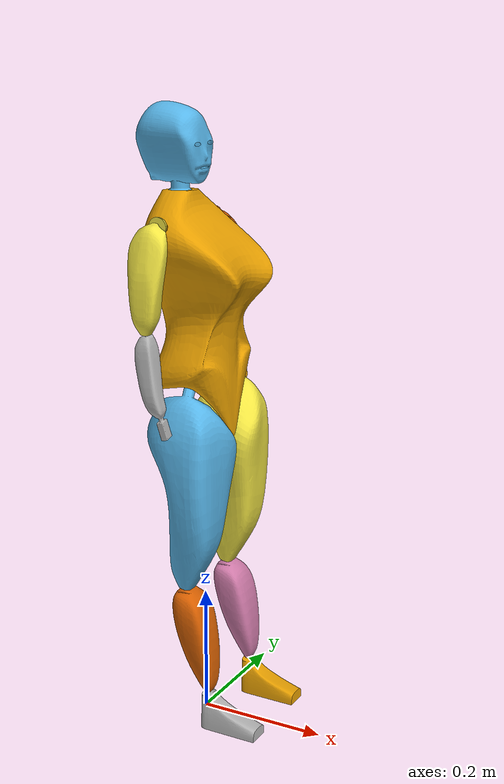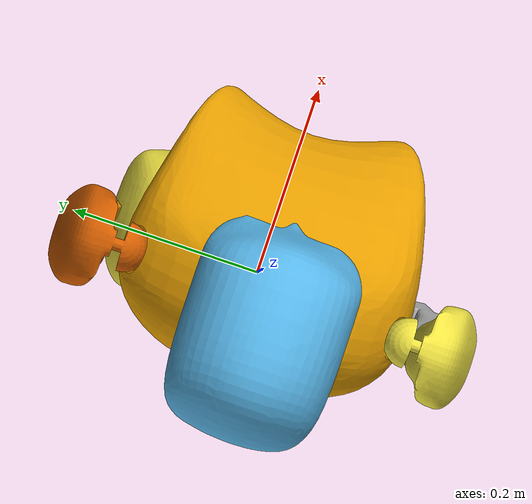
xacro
<?xml version="1.0"?>
<robot xmlns:xacro="http://www.ros.org/wiki/xacro" name="Selene">

    <xacro:include filename="$(find humanoid_robot)/urdf/robot_core.urdf.xacro"/>
    <xacro:include filename="$(find humanoid_robot)/urdf/ros2_control.xacro"/>

    <xacro:robot_core/>
    <xacro:ros2_control/>

</robot>

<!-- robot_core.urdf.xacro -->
<robot xmlns:xacro="http://www.ros.org/wiki/xacro">
    <xacro:macro name="robot_core">

        <!-- ****************************   Links   **************************** -->
        <link name="base_link">
        <inertial>
            <mass value="3.78181180876983" />
            <origin xyz="-0.0100023420943865 0.0113704665181975 0.674727562757712" rpy="0 0 0" />
            <inertia
            ixx="0.0289881715545131" ixy="-2.34952842388438E-05" ixz="0.00203838739877037"
            iyy="0.0282471940044164" iyz="0.000277812220276223" izz="0.00985571887812677" />
        </inertial>

        <visual>
            <origin xyz="0 0 0" rpy="0 0 0" />
            <geometry>
                <mesh filename="$(find humanoid_robot)/meshes/base_link.STL"/>
            </geometry>
        </visual>

        <collision>
            <origin xyz="0 0 0" rpy="0 0 0" />
            <geometry>
                <mesh filename="$(find humanoid_robot)/meshes/base_link.STL"/>
            </geometry>
        </collision>
        </link>

        <link name="Head">
        <inertial>
            <mass value="0.1" />
            <origin xyz="0 0 0.01" rpy="0 0 0" />
            <inertia
            ixx="0.001" ixy="0.0" ixz="0.0"
            iyy="0.001" iyz="0.0" izz="0.001" />
        </inertial>

        <visual>
            <origin xyz="0 0 0" rpy="0 0 0" />
            <geometry>
                <mesh filename="$(find humanoid_robot)/meshes/Head.STL"/>
            </geometry>
        </visual>

        <collision>
            <origin xyz="0 0 0" rpy="0 0 0" />
            <geometry>
                <mesh filename="$(find humanoid_robot)/meshes/Head.STL"/>
            </geometry>
        </collision>
        </link>

        <link name="Neck_Yaw_Link">
        <inertial>
            <mass value="0.05"/>
            <origin xyz=" 0 0 0" rpy="0 0 0" />
            <inertia ixx="0.001" iyy="0.001" izz="0.001" ixy="0" ixz="0" iyz="0"/>
        </inertial>

        <visual>
            <origin xyz="0 0 0" rpy="0 0 0" />
            <geometry>
                <sphere radius="0.001"/>
            </geometry>
        </visual>

        <collision>
            <origin xyz="0 0 0" rpy="0 0 0" />
            <geometry>
                <sphere radius="0.001"/>
            </geometry>
        </collision>
        </link>

        <link name="LShoulder_Pitch_Link">
        <inertial>
            <mass value="0.17396156125864" />
            <origin xyz="-0.000226132441242099 -0.0354806783650563 -0.0683015626357323" rpy="0 0 0" />
            <inertia
            ixx="0.000290783661604433" ixy="8.53619200375728E-08" ixz="9.28025240172068E-07"
            iyy="0.000299832000761949" iyz="-4.02822461595027E-05" izz="4.9521505630746E-05" />
        </inertial>

        <visual>
            <origin xyz="0 0 0" rpy="0 0 0" />
            <geometry>
                <mesh filename="$(find humanoid_robot)/meshes/Shoulder_Left.STL"/>
            </geometry>
        </visual>

        <collision>
            <origin xyz="0 0 0" rpy="0 0 0" />
            <geometry>
                <mesh filename="$(find humanoid_robot)/meshes/Shoulder_Left.STL"/>
            </geometry>
        </collision>
        </link>

        <link name="LShoulder_Roll_Link">
        <inertial>
            <mass value="0.05"/>
            <origin xyz=" 0 0 0" rpy="0 0 0" />
            <inertia ixx="0.001" iyy="0.001" izz="0.001" ixy="0" ixz="0" iyz="0"/>
        </inertial>

        <visual>
            <origin xyz="0 0 0" rpy="0 0 0" />
            <geometry>
                <sphere radius="0.001"/>
            </geometry>
        </visual>

        <collision>
            <origin xyz="0 0 0" rpy="0 0 0" />
            <geometry>
                <sphere radius="0.001"/>
            </geometry>
        </collision>
        </link>

        <link name="RShoulder_Pitch_Link">
        <inertial>
            <mass value="0.173956267653836" />
            <origin xyz="-0.000226503959646872 0.0354809522342639 -0.0683034814503672" rpy="0 0 0" />
            <inertia
            ixx="0.000290775822093302" ixy="-8.64319034159634E-08" ixz="9.31069079745632E-07"
            iyy="0.000299820943485111" iyz="4.02820062142174E-05" izz="4.95193455301138E-05" />
        </inertial>

        <visual>
            <origin xyz="0 0 0" rpy="0 0 0" />
            <geometry>
                <mesh filename="$(find humanoid_robot)/meshes/Shoulder_Right.STL"/>
            </geometry>
        </visual>

        <collision>
            <origin xyz="0 0 0" rpy="0 0 0" />
            <geometry>
                <mesh filename="$(find humanoid_robot)/meshes/Shoulder_Right.STL"/>
            </geometry>
        </collision>
        </link>

        <link name="RShoulder_Roll_Link">
        <inertial>
            <mass value="0.05"/>
            <origin xyz=" 0 0 0" rpy="0 0 0" />
            <inertia ixx="0.001" iyy="0.001" izz="0.001" ixy="0" ixz="0" iyz="0"/>
        </inertial>

        <visual>
            <origin xyz="0 0 0" rpy="0 0 0" />
            <geometry>
                <sphere radius="0.001"/>
            </geometry>
        </visual>

        <collision>
            <origin xyz="0 0 0" rpy="0 0 0" />
            <geometry>
                <sphere radius="0.001"/>
            </geometry>
        </collision>
        </link>

        <link name="Elbow_Left">
        <inertial>
            <mass value="0.080679640365444" />
            <origin xyz="0.00928267206313797 -0.00549982222068757 -0.0621529175277214" rpy="0 0 0" />
            <inertia
            ixx="0.00010013808132852" ixy="8.50147925817831E-07" ixz="2.1171900411E-05"
            iyy="0.000104805954367755" iyz="-4.722322383949E-06" izz="1.42978234327262E-05" />
        </inertial>

        <visual>
            <origin xyz="0 0 0" rpy="0 0 0" />
            <geometry>
                <mesh filename="$(find humanoid_robot)/meshes/Elbow_Left.STL"/>
            </geometry>
        </visual>

        <collision>
            <origin xyz="0 0 0" rpy="0 0 0" />
            <geometry>
                <mesh filename="$(find humanoid_robot)/meshes/Elbow_Left.STL"/>
            </geometry>
        </collision>
        </link>

        <link name="Elbow_Right">
        <inertial>
            <mass value="0.0806748169693422" />
            <origin xyz="0.00928283620034147 0.00549966032962597 -0.0621529115970779" rpy="0 0 0" />
            <inertia
            ixx="0.000100130695775464" ixy="-8.50346985914723E-07" ixz="2.11695824904372E-05"
            iyy="0.000104798052557367" iyz="4.7228265405251E-06" izz="1.42969053841886E-05" />
        </inertial>

        <visual>
            <origin xyz="0 0 0" rpy="0 0 0" />
            <geometry>
                <mesh filename="$(find humanoid_robot)/meshes/Elbow_Right.STL"/>
            </geometry>
        </visual>

        <collision>
            <origin xyz="0 0 0" rpy="0 0 0" />
            <geometry>
                <mesh filename="$(find humanoid_robot)/meshes/Elbow_Right.STL"/>
            </geometry>
        </collision>
        </link>

        <link name="LThigh_Pitch_Link">
        <inertial>
            <mass value="1.71253222820306" />
            <origin xyz="0.0232782491490201 -0.0391974149526159 -0.143116335507406" rpy="0 0 0" />
            <inertia
            ixx="0.00996674674236712" ixy="-3.24702547387314E-05" ixz="0.000390411340022318"
            iyy="0.00993892919291852" iyz="-0.000169586324129286" izz="0.00203984834862235" />
        </inertial>

        <visual>
            <origin xyz="0 0 0" rpy="0 0 0" />
            <geometry>
                <mesh filename="$(find humanoid_robot)/meshes/Thigh_Left.STL"/>
            </geometry>
        </visual>

        <collision>
            <origin xyz="0 0 0" rpy="0 0 0" />
            <geometry>
                <mesh filename="$(find humanoid_robot)/meshes/Thigh_Left.STL"/>
            </geometry>
        </collision>
        </link>

        <link name="LThigh_Yaw_Link">
        <inertial>
            <mass value="0.05"/>
            <origin xyz=" 0 0 0" rpy="0 0 0" />
            <inertia ixx="0.001" iyy="0.001" izz="0.001" ixy="0" ixz="0" iyz="0"/>
        </inertial>

        <visual>
            <origin xyz="0 0 0" rpy="0 0 0" />
            <geometry>
                <sphere radius="0.001"/>
            </geometry>
        </visual>

        <collision>
            <origin xyz="0 0 0" rpy="0 0 0" />
            <geometry>
                <sphere radius="0.001"/>
            </geometry>
        </collision>
        </link>

        <link name="RThigh_Pitch_Link">
        <inertial>
            <mass value="1.71249589076309" />
            <origin xyz="0.0232810333065785 0.0391987879827244 -0.143121811370373" rpy="0 0 0" />
            <inertia
            ixx="0.00996720981270455" ixy="3.26594381610291E-05" ixz="0.000390081057293533"
            iyy="0.00993943224089701" iyz="0.000169678146787137" izz="0.00204017135515511" />
        </inertial>

        <visual>
            <origin xyz="0 0 0" rpy="0 0 0" />
            <geometry>
                <mesh filename="$(find humanoid_robot)/meshes/Thigh_Right.STL"/>
            </geometry>
        </visual>

        <collision>
            <origin xyz="0 0 0" rpy="0 0 0" />
            <geometry>
                <mesh filename="$(find humanoid_robot)/meshes/Thigh_Right.STL"/>
            </geometry>
        </collision>
        </link>

        <link name="RThigh_Yaw_Link">
        <inertial>
            <mass value="0.05"/>
            <origin xyz=" 0 0 0" rpy="0 0 0" />
            <inertia ixx="0.001" iyy="0.001" izz="0.001" ixy="0" ixz="0" iyz="0"/>
        </inertial>

        <visual>
            <origin xyz="0 0 0" rpy="0 0 0" />
            <geometry>
                <sphere radius="0.001"/>
            </geometry>
        </visual>

        <collision>
            <origin xyz="0 0 0" rpy="0 0 0" />
            <geometry>
                <sphere radius="0.001"/>
            </geometry>
        </collision>
        </link>

        <link name="Calf_Left">
        <inertial>
            <mass value="0.327204793273009" />
            <origin xyz="0.0190102600468827 -0.00159963895885237 -0.076517992366644" rpy="0 0 0" />
            <inertia
            ixx="0.00056060655488805" ixy="1.83941448046734E-06" ixz="0.000117382611516597"
            iyy="0.000576927261299078" iyz="-6.31475075527301E-06" izz="0.00015087656827053" />
        </inertial>

        <visual>
            <origin xyz="0 0 0" rpy="0 0 0" />
            <geometry>
                <mesh filename="$(find humanoid_robot)/meshes/Calf_Left.STL"/>
            </geometry>
        </visual>

        <collision>
            <origin xyz="0 0 0" rpy="0 0 0" />
            <geometry>
                <mesh filename="$(find humanoid_robot)/meshes/Calf_Left.STL"/>
            </geometry>
        </collision>
        </link>

        <link name="Calf_Right">
        <inertial>
            <mass value="0.327294266891114" />
            <origin xyz="0.0190029389282548 0.00159876373223955 -0.0765008487844586" rpy="0 0 0" />
            <inertia
            ixx="0.000560814729177772" ixy="-1.8532188939462E-06" ixz="0.000117482190032848"
            iyy="0.0005771798350897" iyz="6.35212960050734E-06" izz="0.000150937009047011" />
        </inertial>

        <visual>
            <origin xyz="0 0 0" rpy="0 0 0" />
            <geometry>
                <mesh filename="$(find humanoid_robot)/meshes/Calf_Right.STL" />
            </geometry>
        </visual>

        <collision>
            <origin xyz="0 0 0" rpy="0 0 0" />
            <geometry>
                <mesh filename="$(find humanoid_robot)/meshes/Calf_Right.STL" />
            </geometry>
        </collision>
        </link>

        <link name="Foot_Left">
        <inertial>
            <mass value="0.109031223076226" />
            <origin xyz="0.0302743738770081 8.60405123109392E-05 -0.0409960721960091" rpy="0 0 0" />
            <inertia
            ixx="3.015596373348E-05" ixy="1.2148890528659E-07" ixz="1.81609695852798E-05"
            iyy="9.62099140376856E-05" iyz="-1.16818324795965E-07" izz="8.50912025243183E-05" />
        </inertial>

        <visual>
            <origin xyz="0 0 0" rpy="0 0 0" />
            <geometry>
                <mesh filename="$(find humanoid_robot)/meshes/Foot_Left.STL" />
            </geometry>
        </visual>

        <collision>
            <origin xyz="0 0 0" rpy="0 0 0" />
            <geometry>
                <mesh filename="$(find humanoid_robot)/meshes/Foot_Left.STL" />
            </geometry>
        </collision>
        </link>

        <link name="Foot_Right">
        <inertial>
            <mass value="0.109031283085521" />
            <origin xyz="0.0302743600707219 8.60381006145966E-05 -0.0409960624720848" rpy="0 0 0" />
            <inertia
            ixx="3.01560100675454E-05" ixy="1.21487322311586E-07" ixz="1.81609850738135E-05"
            iyy="9.62099859924235E-05" iyz="-1.16800691255442E-07" izz="8.50912377824343E-05" />
        </inertial>

        <visual>
            <origin xyz="0 0 0" rpy="0 0 0" />
            <geometry>
                <mesh filename="$(find humanoid_robot)/meshes/Foot_Right.STL" />
            </geometry>
        </visual>

        <collision>
            <origin xyz="0 0 0" rpy="0 0 0" />
            <geometry>
                <mesh filename="$(find humanoid_robot)/meshes/Foot_Right.STL" />
            </geometry>
        </collision>
        </link>

        <!-- ****************************   Joints   **************************** -->
        <joint name="Neck_Yaw" type="revolute">
            <origin xyz="-0.044306 0.010853 0.81525" rpy="0 0 0" />
            <parent link="base_link" />
            <child link="Neck_Yaw_Link" />
            <axis xyz="0 0 1" />
            <limit lower="-1.0472" upper="1.0472" effort="1.0" velocity="1.0"/> <!-- 60 degrees-->
            <dynamics damping="0.2" friction="0.5"/>
        </joint>

        <joint name="Neck_Pitch" type="revolute">
            <origin xyz="0 0 0" rpy="0 0 0" />
            <parent link="Neck_Yaw_Link" />
            <child link="Head" />
            <axis xyz="0 1 0" />
            <limit lower="-0.523599" upper="0.523599" effort="1.0" velocity="1.0"/> <!-- 30 degrees -->
            <dynamics damping="0.2" friction="0.5"/>
        </joint>

        <joint name="TorsoShoulder_Left_Roll" type="revolute">
            <origin xyz="-0.033379 -0.064693 0.78215" rpy="0 0 0" />
            <parent link="base_link" />
            <child link="LShoulder_Roll_Link" />
            <axis xyz="1 0 0" />
            <limit lower="-1.0472" upper="0" effort="1.0" velocity="1.0"/> <!-- 0 - 60 degrees -->
            <dynamics damping="0.2" friction="0.5"/>
        </joint>

        <joint name="TorsoShoulder_Left_Pitch" type="revolute">
            <origin xyz="0 0 0" rpy="0 0 0" />
            <parent link="LShoulder_Roll_Link" />
            <child link="LShoulder_Pitch_Link" />
            <axis xyz="0 1 0" />
            <limit lower="-3.14159" upper="0.349066" effort="1.0" velocity="1.0"/> <!-- (-20) - 180 degrees-->
            <dynamics damping="0.2" friction="0.5"/>
        </joint>

        <joint name="ShoulderElbow_Left" type="revolute">
            <origin xyz="-0.00073185 -0.040103 -0.14681" rpy="0 0 0" />
            <parent link="LShoulder_Pitch_Link" />
            <child link="Elbow_Left" />
            <axis xyz="-0.025189 0.99968 0" />
            <limit lower="-1.74533" upper="0.349066" effort="1.0" velocity="1.0"/> <!-- (-20) - 100 deg-->
            <dynamics damping="0.2" friction="0.5"/>
        </joint>

        <joint name="TorsoShoulder_Right_Roll" type="revolute">
            <origin xyz="-0.033308 0.08489 0.77914" rpy="0 0 0" />
            <parent link="base_link" />
            <child link="RShoulder_Roll_Link" />
            <axis xyz="1 0 0" />
            <limit lower="0" upper="1.0472" effort="1.0" velocity="1.0"/> <!-- 0 - 60 degrees -->
            <dynamics damping="0.2" friction="0.5"/>
        </joint>

        <joint name="TorsoShoulder_Right_Pitch" type="revolute">
            <origin xyz="0 0 0" rpy="0 0 0" />
            <parent link="RShoulder_Roll_Link" />
            <child link="RShoulder_Pitch_Link" />
            <axis xyz="0 1 0" />
            <limit lower="-3.14159" upper="0.349066" effort="1.0" velocity="1.0"/> <!-- (-20) - 180 degrees-->
            <dynamics damping="0.2" friction="0.5"/>
        </joint>

        <joint name="ShoulderElbow_Right" type="revolute">
            <origin xyz="-0.00073185 0.040103 -0.14681" rpy="0 0 0" />
            <parent link="RShoulder_Pitch_Link" />
            <child link="Elbow_Right" />
            <axis xyz="0.025189 0.99968 0" />
            <limit lower="-1.74533" upper="0.349066" effort="1.0" velocity="1.0"/> <!-- (-20) to 100 deg-->
            <dynamics damping="0.2" friction="0.5"/>
        </joint>

        <joint name="TorsoThigh_Left_Yaw" type="revolute">
            <origin xyz="-0.013335 -0.010993 0.55295" rpy="0 0 0" />
            <parent link="base_link" />
            <child link="LThigh_Yaw_Link" />
            <axis xyz="0 0 1" />
            <limit lower="-0.0872665" upper="0.349066" effort="1.0" velocity="1.0"/> <!-- (-5) - 20 degrees -->
            <dynamics damping="0.2" friction="0.5"/>
        </joint>

        <joint name="TorsoThigh_Left_Pitch" type="revolute">
            <origin xyz="0 0 0" rpy="0 0 0" />
            <parent link="LThigh_Yaw_Link" />
            <child link="LThigh_Pitch_Link" />
            <axis xyz="0 1 0" />
            <limit lower="-2.0944" upper="0.349066" effort="1.0" velocity="1.0"/> <!-- (-60) - 120 degrees-->
            <dynamics damping="0.2" friction="0.5"/>
        </joint>

        <joint name="ThighCalf_Left" type="revolute">
            <origin xyz="0.0094239 -0.039542 -0.32005" rpy="0 0 0" />
            <parent link="LThigh_Pitch_Link" />
            <child link="Calf_Left" />
            <axis xyz="0 1 0" />
            <limit lower="-0.349066" upper="1.74533" effort="1.0" velocity="1.0"/> <!-- (-20) - 100 degrees-->
            <dynamics damping="0.2" friction="0.5"/>
        </joint>

        <joint name="CalfFoot_Left" type="revolute">
            <origin xyz="0.039418 -0.0024472 -0.17177" rpy="0 0 0" />
            <parent link="Calf_Left" />
            <child link="Foot_Left" />
            <axis xyz="0 1 0" />
            <limit lower="-0.785398" upper="0.785398" effort="1.0" velocity="1.0"/> <!-- 45 degrees-->
            <dynamics damping="0.2" friction="0.5"/>
        </joint>

        <joint name="TorsoThigh_Right_Yaw" type="revolute">
            <origin xyz="-0.015152 0.040137 0.55044" rpy="0 0 0" />
            <parent link="base_link" />
            <child link="RThigh_Yaw_Link" />
            <axis xyz="0 0 1" />
            <limit lower="-0.0872665" upper="0.349066" effort="1.0" velocity="1.0"/> <!-- (-5) - 20 degrees -->
            <dynamics damping="0.2" friction="0.5"/>
        </joint>

        <joint name="TorsoThigh_Right_Pitch" type="revolute">
            <origin xyz="0 0 0" rpy="0 0 0" />
            <parent link="RThigh_Yaw_Link" />
            <child link="RThigh_Pitch_Link" />
            <axis xyz="0 1 0" />
            <limit lower="-2.0944" upper="0.349066" effort="1.0" velocity="1.0"/> <!-- 60 - (-120) degrees-->
            <dynamics damping="0.2" friction="0.5"/>
        </joint>

        <joint name="ThighCalf_Right" type="revolute">
            <origin xyz="0.0094239 0.039542 -0.32005" rpy="0 0 0" />
            <parent link="RThigh_Pitch_Link" />
            <child link="Calf_Right" />
            <axis xyz="0 1 0" />
            <limit lower="-0.349066" upper="1.74533" effort="1.0" velocity="1.0"/> <!-- (-20) - 100 degrees-->
            <dynamics damping="0.2" friction="0.5"/>
        </joint>

        <joint name="CalfFoot_Right" type="revolute">
            <origin xyz="0.039418 0.002408 -0.17177" rpy="0 0 0" />
            <parent link="Calf_Right" />
            <child link="Foot_Right" />
            <axis xyz="0 1 0" />
            <limit lower="-0.785398" upper="0.785398" effort="1.0" velocity="1.0"/> <!-- 45 degrees-->
            <dynamics damping="0.2" friction="0.5"/>
        </joint>

        <!-- ****************************   IMU Sensor   **************************** -->
        <!-- IMU Link -->
        <link name="imu_link">
            <inertial>
                <mass value = "0.1"/>
                <origin value = "0 0 0"/>
                <inertia ixx="0.01" ixy="0.0" ixz="0.0" iyy="0.1" iyz="0.0" izz="0.01"/>
            </inertial>

            <visual>
                <geometry>
                    <sphere radius="0.005"/>
                </geometry>
                <origin xyz="0 0 0" rpy="0 0 0"/>
            </visual>

            <collision>
                <geometry>
                    <sphere radius="0.005"/>
                </geometry>
                <origin xyz="0 0 0" rpy="0 0 0"/>
            </collision>
        </link>

        <!-- IMU Joint -->
        <joint name="imu_base_link_joint" type="fixed">
            <parent link="base_link"/>
            <child link="imu_link"/>
            <origin xyz="0 0.01 0.6" rpy="0 0 0"/>
        </joint>
    </xacro:macro>
</robot>
